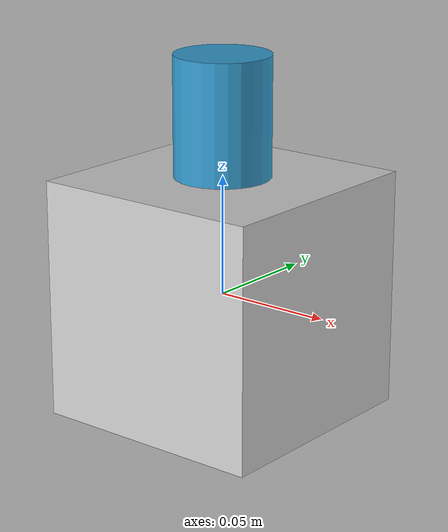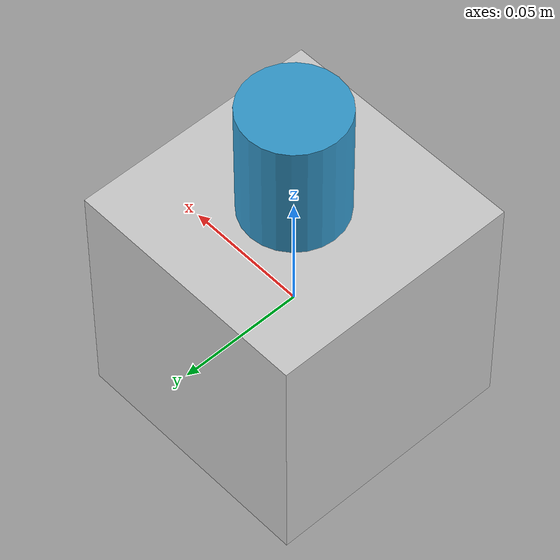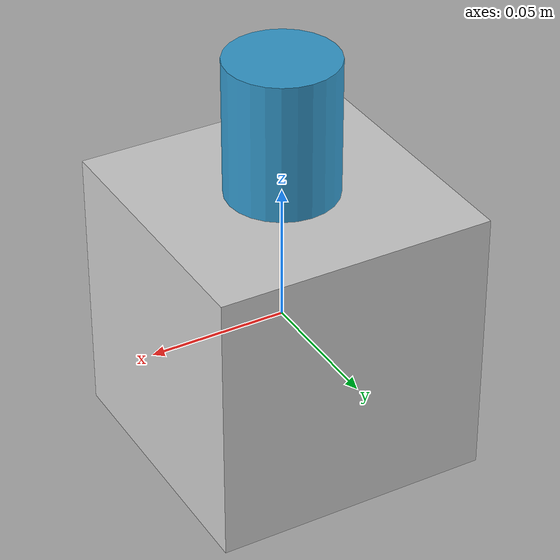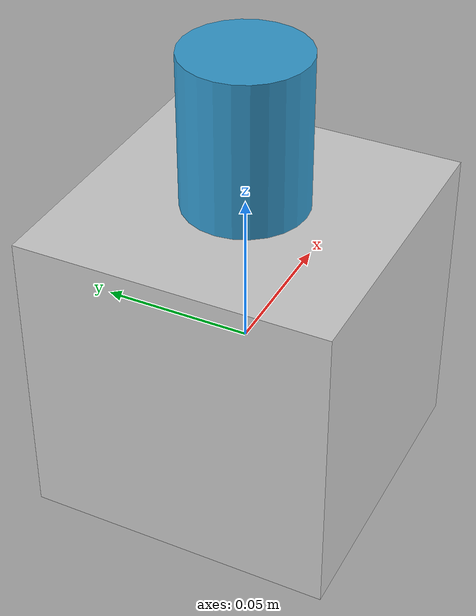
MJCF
<mujoco model="test_robot_kv">
  <compiler angle="radian" autolimits="true"/>
  <option timestep="0.001" gravity="0 0 -9.81"/>

  <worldbody>
    <body name="base_link">
      <geom type="box" size="0.05 0.05 0.05" rgba="0.8 0.8 0.8 1"/>

      <body name="link1">
        <joint name="test_joint1" type="hinge" axis="0 0 1" range="-3.14 3.14"/>
        <geom type="cylinder" size="0.02 0.05" pos="0 0 0.05" rgba="0.2 0.6 0.8 1"/>
        <inertial pos="0 0 0.05" mass="0.5" diaginertia="0.005 0.005 0.001"/>
      </body>
    </body>
  </worldbody>

  <!-- INTENTIONAL CONFIGURATION: Position actuator with NON-ZERO kv -->
  <!-- This should trigger a warning when position interface is exposed but not active -->
  <actuator>
    <position name="act_pos_test_joint1" joint="test_joint1"
              kp="20.0" kv="5.0"
              ctrlrange="-3.14 3.14" forcerange="-10 10"/>

    <velocity name="act_vel_test_joint1" joint="test_joint1"
              kv="2.0"
              ctrlrange="-2.0 2.0" forcerange="-10 10"/>

    <motor name="act_tau_test_joint1" joint="test_joint1"
           ctrlrange="-10 10" forcerange="-10 10"/>
  </actuator>
</mujoco>
